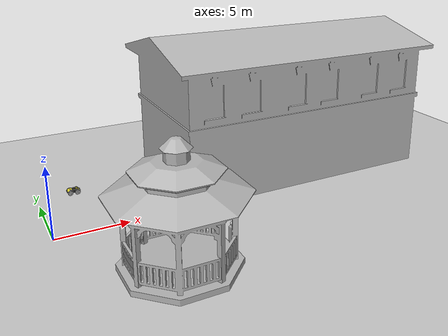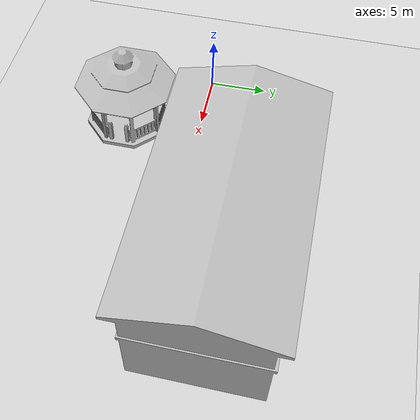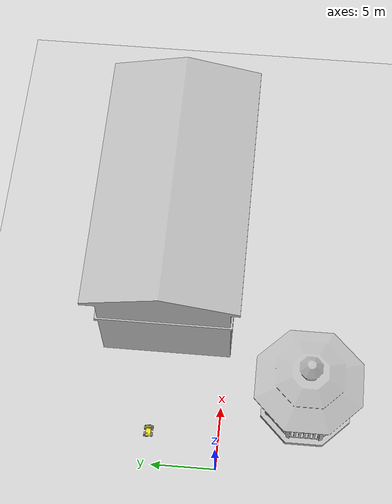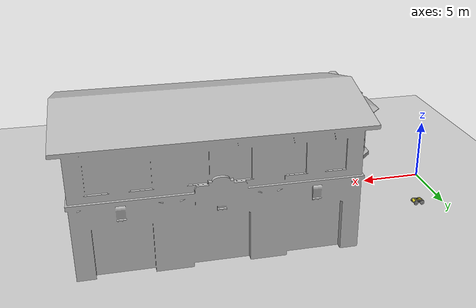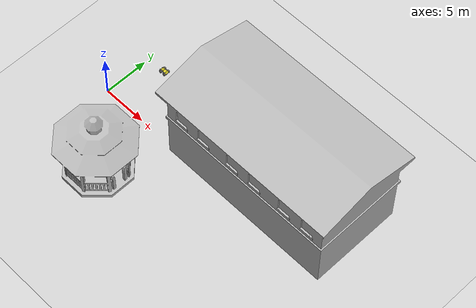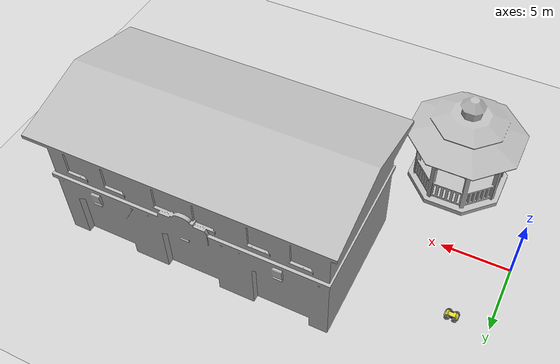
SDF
<sdf version="1.7">
 <world name="default">
  <light name="sun" type="directional">
   <pose>0 0 10 0 -0 0</pose>
   <diffuse>0.8 0.8 0.8 1</diffuse>
   <specular>0.2 0.2 0.2 1</specular>
   <attenuation>
    <range>1000</range>
    <constant>0.9</constant>
    <linear>0.01</linear>
    <quadratic>0.001</quadratic>
   </attenuation>
   <direction>-0.5 0.1 -0.9</direction>
   <spot><inner_angle>0</inner_angle><outer_angle>0</outer_angle><falloff>0</falloff></spot>
  </light>
  <model name="ground_plane">
   <static>1</static>
   <link name="link">
    <collision name="collision">
     <geometry><plane><normal>0 0 1</normal><size>100 100</size></plane></geometry>
     <surface><friction><ode><mu>100</mu><mu2>50</mu2></ode></friction></surface>
    </collision>
    <visual name="visual">
     <cast_shadows>0</cast_shadows>
     <geometry><plane><normal>0 0 1</normal><size>100 100</size></plane></geometry>
     <material>
      <script><uri>file://media/materials/scripts/gazebo.material</uri><name>Gazebo/Grey</name></script>
     </material>
    </visual>
   </link>
  </model>
  <gravity>0 0 -9.8</gravity>
  <magnetic_field>6e-06 2.3e-05 -4.2e-05</magnetic_field>
  <atmosphere type="adiabatic"/>
  <physics type="ode">
   <max_step_size>0.001</max_step_size>
   <real_time_factor>1</real_time_factor>
   <real_time_update_rate>1000</real_time_update_rate>
  </physics>
  <scene><ambient>0.4 0.4 0.4 1</ambient><background>0.7 0.7 0.7 1</background><shadows>1</shadows></scene>
  <spherical_coordinates>
   <surface_model>EARTH_WGS84</surface_model>
   <latitude_deg>0</latitude_deg>
   <longitude_deg>0</longitude_deg>
   <elevation>0</elevation>
   <heading_deg>0</heading_deg>
  </spherical_coordinates>
  <model name="fire_station">
   <static>1</static>
   <link name="link">
    <collision name="main">
     <pose>0 -0.135 5 0 -0 0</pose>
     <geometry><box><size>19.98 9.68 10</size></box></geometry>
    </collision>
    <collision name="front_top">
     <pose>0 4.957 7 0 -0 0</pose>
     <geometry><box><size>20 0.515 6</size></box></geometry>
    </collision>
    <collision name="column_0">
     <pose>9.333 4.957 2 0 -0 0</pose>
     <geometry><box><size>1.315 0.515 4</size></box></geometry>
    </collision>
    <collision name="column_1">
     <pose>3.33 4.957 2 0 -0 0</pose>
     <geometry><box><size>2.63 0.515 4</size></box></geometry>
    </collision>
    <collision name="column_2">
     <pose>-3.33 4.957 2 0 -0 0</pose>
     <geometry><box><size>2.63 0.515 4</size></box></geometry>
    </collision>
    <collision name="column_3">
     <pose>-9.333 4.957 2 0 -0 0</pose>
     <geometry><box><size>1.315 0.515 4</size></box></geometry>
    </collision>
    <collision name="roof_back">
     <pose>0 -2.742 10.467 0.25 -0 0</pose>
     <geometry><box><size>21.47 6.12 0.28</size></box></geometry>
    </collision>
    <collision name="roof_front">
     <pose>0 3.12 10.467 -0.25 0 0</pose>
     <geometry><box><size>21.47 6.12 0.28</size></box></geometry>
    </collision>
    <collision name="roof_base">
     <pose>0 0.188 9.705 0 -0 0</pose>
     <geometry><box><size>21.47 11.86 0.28</size></box></geometry>
    </collision>
    <collision name="roof_filling_0">
     <pose>0 0.188 9.985 0 -0 0</pose>
     <geometry><box><size>21.47 9.53 0.28</size></box></geometry>
    </collision>
    <collision name="roof_filling_1">
     <pose>0 0.188 10.14 0 -0 0</pose>
     <geometry><box><size>21.47 8.41 0.28</size></box></geometry>
    </collision>
    <collision name="roof_filling_2">
     <pose>0 0.188 10.42 0 -0 0</pose>
     <geometry><box><size>21.47 6.25 0.28</size></box></geometry>
    </collision>
    <collision name="roof_filling_3">
     <pose>0 0.188 10.7 0 -0 0</pose>
     <geometry><box><size>21.47 4.05 0.28</size></box></geometry>
    </collision>
    <collision name="roof_filling_4">
     <pose>0 0.188 10.98 0 -0 0</pose>
     <geometry><box><size>21.47 1.83 0.28</size></box></geometry>
    </collision>
    <visual name="visual">
     <geometry><mesh><uri>model://fire_station/meshes/fire_station.dae</uri></mesh></geometry>
    </visual>
   </link>
   <pose>19.3403 4.62414 0 0 -0 0</pose>
  </model>
  <model name="gazebo">
   <static>1</static>
   <link name="link">
    <collision name="collision">
     <geometry><mesh><scale>3 3 2.5</scale><uri>model://gazebo/meshes/gazebo.dae</uri></mesh></geometry>
    </collision>
    <visual name="visual">
     <geometry><mesh><scale>3 3 2.5</scale><uri>model://gazebo/meshes/gazebo.dae</uri></mesh></geometry>
    </visual>
   </link>
   <pose>5.9911 -6.5774 0 0 -0 0</pose>
  </model>
  <model name="husky">
   <pose>2.48851 5.41342 0.5 0 -0 0</pose>
   <link name="base_link">
    <collision name="collision">
     <pose>0 0 0.1 0 -0 0</pose>
     <geometry><box><size>1.0074 0.5709 0.2675</size></box></geometry>
    </collision>
    <inertial>
     <mass>33.855</mass>
     <pose>-0.085613 -0.00084 0.238145 0 -0 0</pose>
     <inertia>
      <ixx>2.2343</ixx>
      <ixy>-0.023642</ixy>
      <ixz>0.275174</ixz>
      <iyy>3.42518</iyy>
      <iyz>0.00239624</iyz>
      <izz>2.1241</izz>
     </inertia>
    </inertial>
    <visual name="base">
     <geometry><mesh><uri>model://husky/meshes/base_link.stl</uri></mesh></geometry>
     <material><script><name>Gazebo/FlatBlack</name><uri>__default__</uri></script></material>
    </visual>
    <visual name="top_plate">
     <geometry><mesh><uri>model://husky/meshes/top_plate.stl</uri></mesh></geometry>
     <material><script><name>Gazebo/Yellow</name><uri>__default__</uri></script></material>
    </visual>
    <visual name="front_bumper">
     <pose>0.47 0 0.091 0 -0 0</pose>
     <geometry><mesh><uri>model://husky/meshes/bumper.stl</uri></mesh></geometry>
     <material><script><name>Gazebo/FlatBlack</name><uri>__default__</uri></script></material>
    </visual>
    <visual name="rear_bumper">
     <pose>-0.47 0 0.091 0 -0 3.141</pose>
     <geometry><mesh><uri>model://husky/meshes/bumper.stl</uri></mesh></geometry>
     <material><script><name>Gazebo/FlatBlack</name><uri>__default__</uri></script></material>
    </visual>
    <visual name="user_rail">
     <pose>0.272 0 0.245 0 -0 0</pose>
     <geometry><mesh><uri>model://husky/meshes/user_rail.stl</uri></mesh></geometry>
     <material><script><name>Gazebo/Grey</name><uri>__default__</uri></script></material>
    </visual>
   </link>
   <link name="back_left_wheel">
    <pose>-0.256 0.285475 0.035 0 -0 0</pose>
    <inertial>
     <mass>2.6357</mass>
     <inertia>
      <ixx>0.0246688</ixx>
      <ixy>0</ixy>
      <ixz>0</ixz>
      <iyy>0.0246688</iyy>
      <iyz>0</iyz>
      <izz>0.0441058</izz>
     </inertia>
    </inertial>
    <collision name="back_left_wheel_collision">
     <pose>0 0 0 -1.5707 0 0</pose>
     <geometry><cylinder><radius>0.17775</radius><length>0.1143</length></cylinder></geometry>
     <surface>
      <friction><ode><mu>100000</mu><mu2>100000</mu2><slip1>0</slip1><slip2>0</slip2></ode></friction>
     </surface>
    </collision>
    <visual name="back_left_wheel">
     <pose>0 0 0 -3.14159 0 0</pose>
     <geometry><mesh><uri>model://husky/meshes/wheel.stl</uri></mesh></geometry>
     <material><script><name>Gazebo/Grey</name><uri>__default__</uri></script></material>
    </visual>
   </link>
   <joint name="back_left_joint" type="revolute">
    <parent>base_link</parent>
    <child>back_left_wheel</child>
    <axis>
     <xyz expressed_in="__model__">0 1 0</xyz>
     <limit><lower>-1e+16</lower><upper>1e+16</upper></limit>
     <dynamics><spring_reference>0</spring_reference><spring_stiffness>0</spring_stiffness></dynamics>
    </axis>
    <physics><ode><limit><cfm>0</cfm><erp>0.9</erp></limit></ode></physics>
   </joint>
   <link name="back_right_wheel">
    <pose>-0.256 -0.285475 0.035 0 -0 0</pose>
    <inertial>
     <mass>2.6357</mass>
     <inertia>
      <ixx>0.0246688</ixx>
      <ixy>0</ixy>
      <ixz>0</ixz>
      <iyy>0.0246688</iyy>
      <iyz>0</iyz>
      <izz>0.0441058</izz>
     </inertia>
    </inertial>
    <collision name="back_right_wheel_collision">
     <pose>0 0 0 -1.5707 0 0</pose>
     <geometry><cylinder><radius>0.17775</radius><length>0.1143</length></cylinder></geometry>
     <surface>
      <friction><ode><mu>100000</mu><mu2>100000</mu2><slip1>0</slip1><slip2>0</slip2></ode></friction>
     </surface>
    </collision>
    <visual name="back_right_wheel">
     <pose>0 0 0 -3.14159 0 0</pose>
     <geometry><mesh><uri>model://husky/meshes/wheel.stl</uri></mesh></geometry>
     <material><script><name>Gazebo/Grey</name><uri>__default__</uri></script></material>
    </visual>
   </link>
   <joint name="back_right_joint" type="revolute">
    <parent>base_link</parent>
    <child>back_right_wheel</child>
    <axis>
     <xyz expressed_in="__model__">0 1 0</xyz>
     <limit><lower>-1e+16</lower><upper>1e+16</upper></limit>
     <dynamics><spring_reference>0</spring_reference><spring_stiffness>0</spring_stiffness></dynamics>
    </axis>
    <physics><ode><limit><cfm>0</cfm><erp>0.9</erp></limit></ode></physics>
   </joint>
   <link name="front_left_wheel">
    <pose>0.256 0.285475 0.035 0 -0 0</pose>
    <inertial>
     <mass>2.6357</mass>
     <inertia>
      <ixx>0.0246688</ixx>
      <ixy>0</ixy>
      <ixz>0</ixz>
      <iyy>0.0246688</iyy>
      <iyz>0</iyz>
      <izz>0.0441058</izz>
     </inertia>
    </inertial>
    <collision name="front_left_wheel_collision">
     <pose>0 0 0 -1.5707 0 0</pose>
     <geometry><cylinder><radius>0.17775</radius><length>0.1143</length></cylinder></geometry>
     <surface>
      <friction><ode><mu>100000</mu><mu2>100000</mu2><slip1>0</slip1><slip2>0</slip2></ode></friction>
     </surface>
    </collision>
    <visual name="front_left_wheel">
     <pose>0 0 0 -3.14159 0 0</pose>
     <geometry><mesh><uri>model://husky/meshes/wheel.stl</uri></mesh></geometry>
     <material><script><name>Gazebo/Grey</name><uri>__default__</uri></script></material>
    </visual>
   </link>
   <joint name="front_left_joint" type="revolute">
    <parent>base_link</parent>
    <child>front_left_wheel</child>
    <axis>
     <xyz expressed_in="__model__">0 1 0</xyz>
     <limit><lower>-1e+16</lower><upper>1e+16</upper></limit>
     <dynamics><spring_reference>0</spring_reference><spring_stiffness>0</spring_stiffness></dynamics>
    </axis>
    <physics><ode><limit><cfm>0</cfm><erp>0.9</erp></limit></ode></physics>
   </joint>
   <link name="front_right_wheel">
    <pose>0.256 -0.285475 0.035 0 -0 0</pose>
    <inertial>
     <mass>2.6357</mass>
     <inertia>
      <ixx>0.0246688</ixx>
      <ixy>0</ixy>
      <ixz>0</ixz>
      <iyy>0.0246688</iyy>
      <iyz>0</iyz>
      <izz>0.0441058</izz>
     </inertia>
    </inertial>
    <collision name="front_right_wheel_collision">
     <pose>0 0 0 -1.5707 0 0</pose>
     <geometry><cylinder><radius>0.17775</radius><length>0.1143</length></cylinder></geometry>
     <surface>
      <friction><ode><mu>100000</mu><mu2>100000</mu2><slip1>0</slip1><slip2>0</slip2></ode></friction>
     </surface>
    </collision>
    <visual name="front_right_wheel">
     <pose>0 0 0 -3.14159 0 0</pose>
     <geometry><mesh><uri>model://husky/meshes/wheel.stl</uri></mesh></geometry>
     <material><script><name>Gazebo/Grey</name><uri>__default__</uri></script></material>
    </visual>
   </link>
   <joint name="front_right_joint" type="revolute">
    <parent>base_link</parent>
    <child>front_right_wheel</child>
    <axis>
     <xyz expressed_in="__model__">0 1 0</xyz>
     <limit><lower>-1e+16</lower><upper>1e+16</upper></limit>
     <dynamics><spring_reference>0</spring_reference><spring_stiffness>0</spring_stiffness></dynamics>
    </axis>
    <physics><ode><limit><cfm>0</cfm><erp>0.9</erp></limit></ode></physics>
   </joint>
   <plugin name="husky_diff_controller" filename="libhusky_gazebo_plugins.so">
    <alwaysOn>1</alwaysOn>
    <updateRate>100.0</updateRate>
    <backLeftJoint>back_left_joint</backLeftJoint>
    <backRightJoint>back_right_joint</backRightJoint>
    <frontLeftJoint>front_left_joint</frontLeftJoint>
    <frontRightJoint>front_right_joint</frontRightJoint>
    <wheelSeparation>0.5709</wheelSeparation>
    <wheelDiameter>0.3555</wheelDiameter>
    <torque>35</torque>
   </plugin>
  </model>
 </world>
</sdf>
